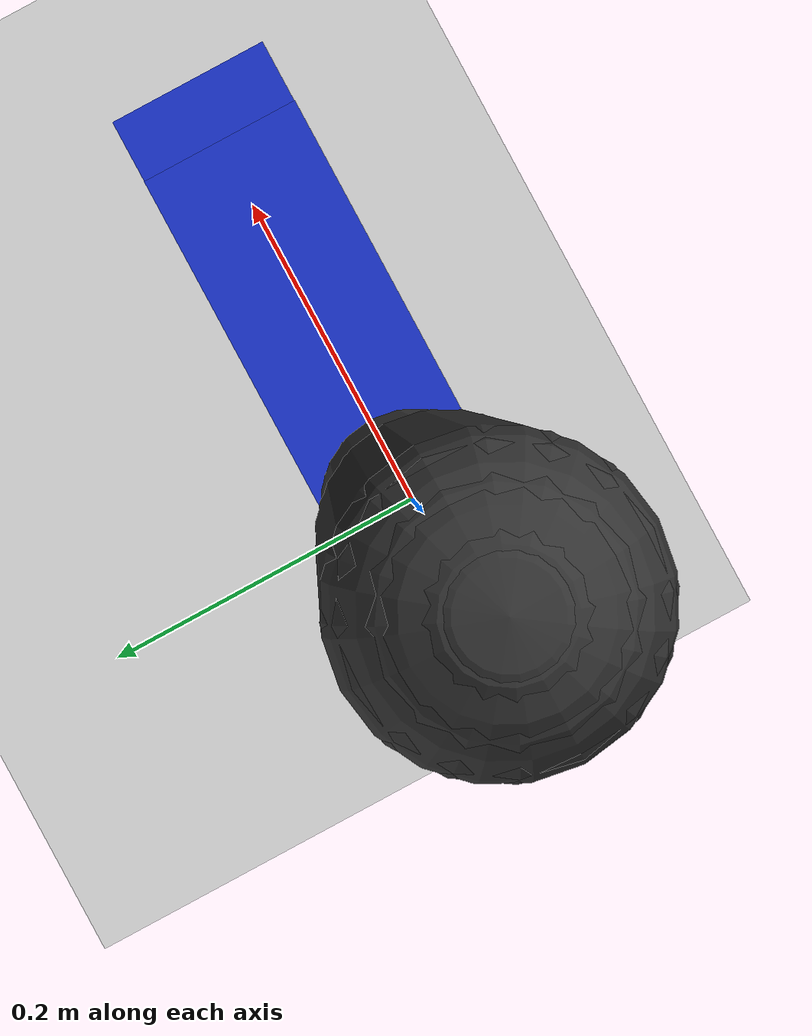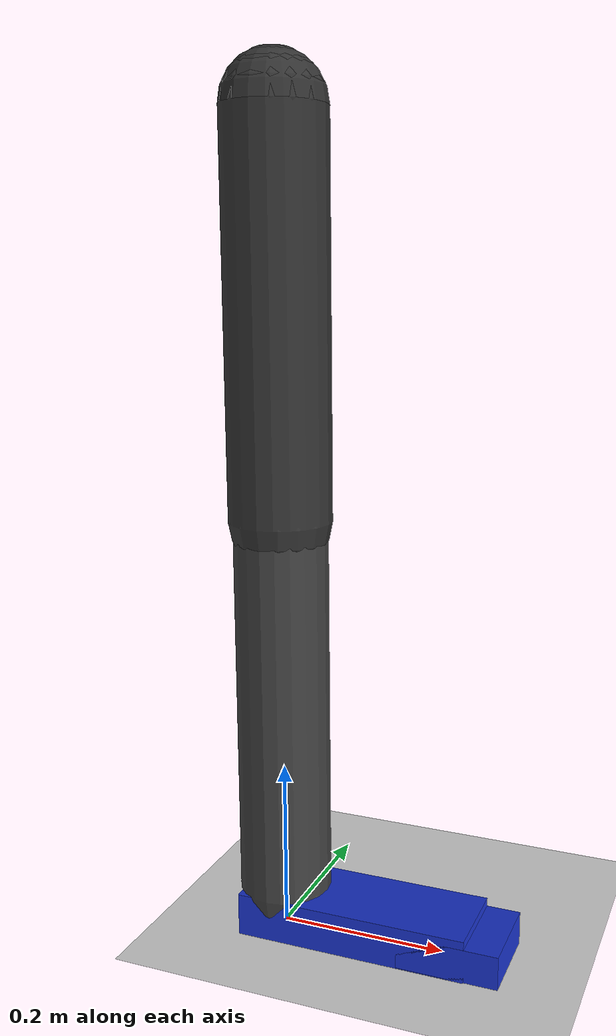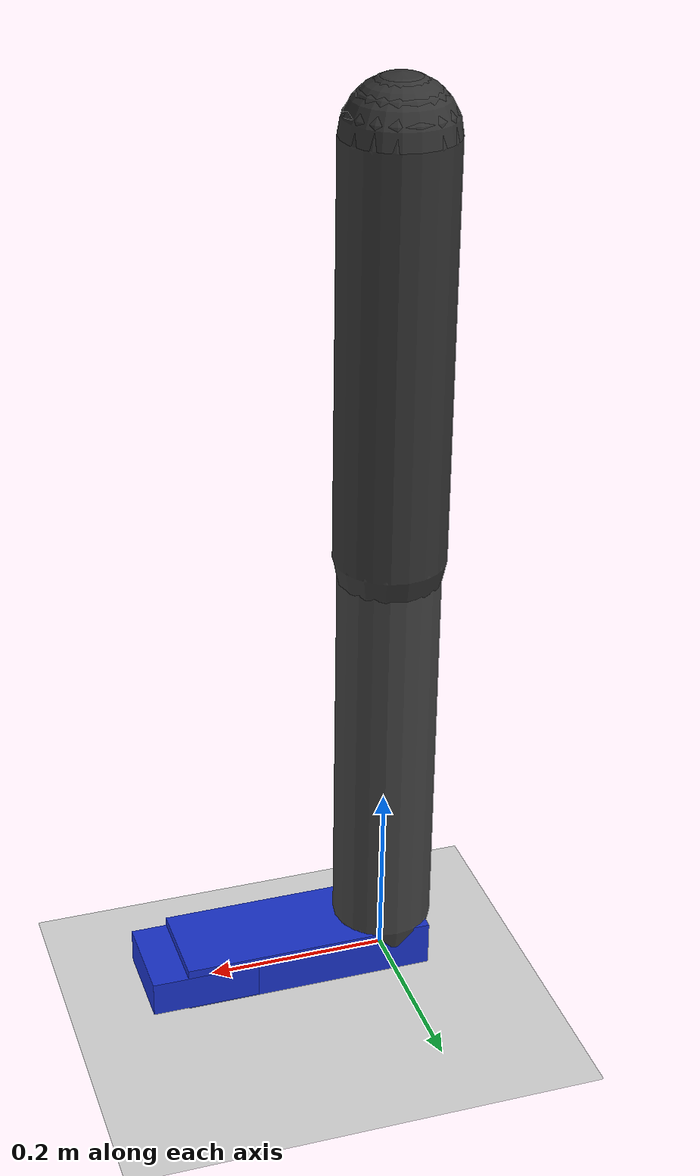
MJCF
<mujoco model="leg_3dof">
  <compiler angle="radian" coordinate="local"/>
  <option timestep="0.002" gravity="0 0 -9.81" integrator="RK4"/>
  <size njmax="2000" nconmax="200"/>
  <default>
    <joint damping="1" armature="0.02" limited="true"/>
    <geom friction="1.0 0.05 0.001" density="500" rgba="0.4 0.4 0.4 1"/>
    <motor ctrlrange="-150 150"/>
  </default>

  <worldbody>
    <!-- ground -->
    <geom name="floor" type="plane" size="5 5 0.1" rgba="0.85 0.85 0.85 1"/>

    <!-- pelvis frame -->
    <body name="pelvis" pos="0 0 0.95">

      <geom name="pelvis_geom" type="sphere" size="0.06" rgba="0.2 0.2 0.2 1"/>

      <!-- thigh -->
      <body name="thigh" pos="0 0 0">
        <joint name="hip" type="hinge" axis="0 1 0" range="-1.2 1.2"/>
        <geom name="thigh_geom" type="capsule" fromto="0 0 0  0 0 -0.45" size="0.06" rgba="0.2 0.2 0.2 1"/>

        <!-- shank -->
        <body name="shank" pos="0 0 -0.45">
          <joint name="knee" type="hinge" axis="0 1 0" range="-2.2 0.0"/>
          <geom name="shank_geom" type="capsule" fromto="0 0 0  0 0 -0.45" size="0.055" rgba="0.25 0.25 0.25 1"/>

          <!-- foot -->
          <body name="foot" pos="0 0 -0.45">
            <joint name="ankle" type="hinge" axis="0 1 0" range="-0.8 0.8"/>
            <!-- ankle block -->
            <geom name="ankle_geom" type="sphere" size="0.045" rgba="0.2 0.2 0.2 1"/>

            <!-- foot sole: a flat capsule-ish box -->
            <geom name="foot_geom" type="box" pos="0.10 0 -0.03" size="0.14 0.05 0.03" rgba="0.1 0.2 0.8 1"/>

            <!-- toe (optional) -->
            <geom name="toe_geom" type="box" pos="0.22 0 -0.03" size="0.06 0.05 0.02" rgba="0.1 0.2 0.8 1"/>

            <!-- contact site (optional) -->
            <site name="toe_site" pos="0.25 0 -0.03" size="0.01" rgba="1 0 0 1"/>
          </body>
        </body>
      </body>
    </body>
  </worldbody>

  <actuator>
    <motor name="hip_motor" joint="hip" gear="1"/>
    <motor name="knee_motor" joint="knee" gear="1"/>
    <motor name="ankle_motor" joint="ankle" gear="1"/>
  </actuator>
</mujoco>
